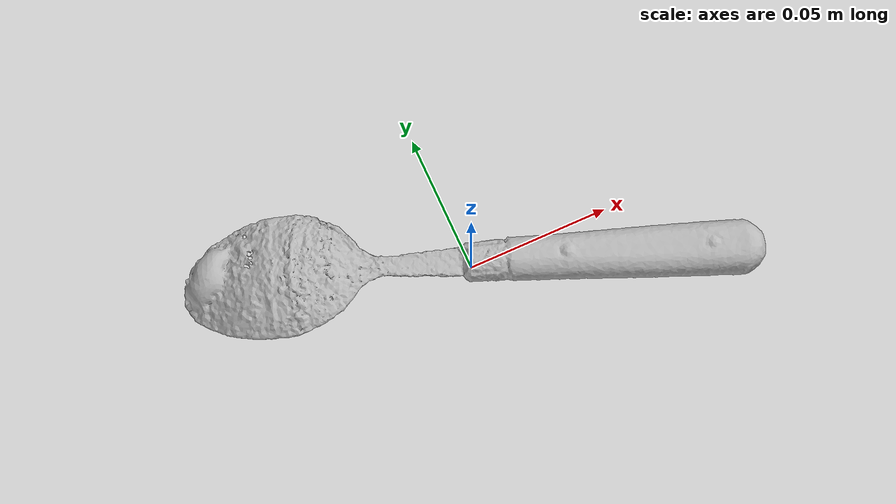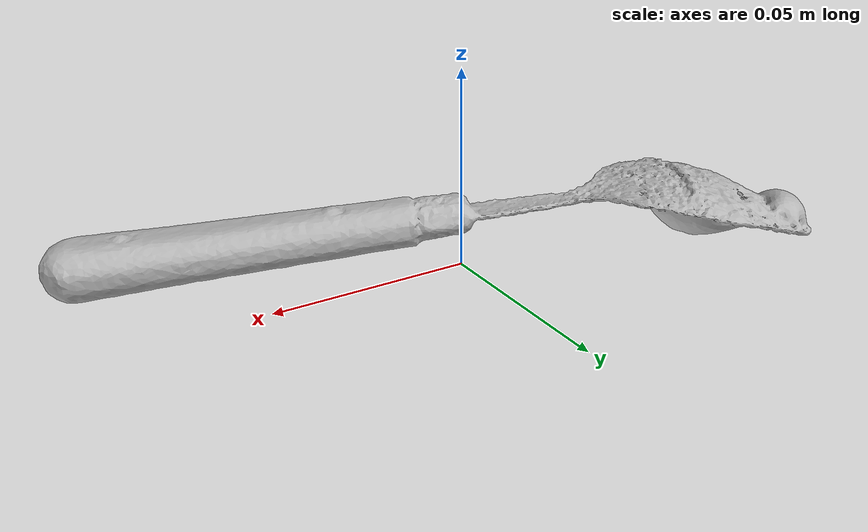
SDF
<?xml version="1.0" ?>
<sdf version='1.8'>
  <model name='ycb_031_spoon'>
    <link name='body'>
      <inertial>
        <mass>0.03</mass>
        <pose>0.00894508309 -0.00495356509 0.0105515925 0 0 0</pose>
        <inertia>
          <ixx>1.42613671184e-05</ixx>
          <ixy>3.51581177665e-05</ixy>
          <ixz>2.98776248622e-06</ixz>
          <iyy>9.87797131272e-05</iyy>
          <iyz>-1.04466163266e-06</iyz>
          <izz>0.000112109594868</izz>
        </inertia>
      </inertial>
      <visual name='ycb_031_spoon_visual'>
        <pose>0.027001 0.005207 0.000503 0 0 0</pose>
        <geometry>
          <mesh>
            <uri>model://ycb_031_spoon/meshes/textured.dae</uri>
          </mesh>
        </geometry>
      </visual>
      <collision name='ycb_031_spoon_collision'>
        <pose>0.027001 0.005207 0.000503 0 0 0</pose>
        <geometry>
          <mesh>
            <uri>model://ycb_031_spoon/meshes/nontextured.stl</uri>
          </mesh>
        </geometry>
        <max_contacts>10</max_contacts>
        <surface>
          <contact>
            <ode>
              <kp>1e15</kp>
              <kd>1e13</kd>
            </ode>
          </contact>
        </surface>
      </collision>
    </link>
  </model>
</sdf>
